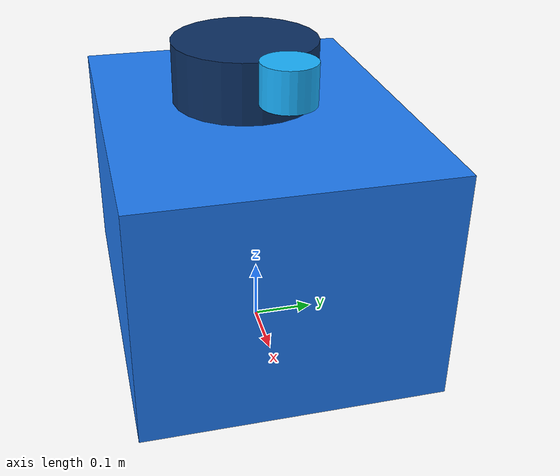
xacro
<?xml version="1.0"?>
<robot name="showroom_guide_robot" xmlns:xacro="http://www.ros.org/wiki/xacro">
  <!-- ROS-side kinematic model. Gazebo physics lives in the SDF xacro next
       to this file. Dimensions intentionally match the Stage guide robot. -->
  <xacro:include filename="$(find showroom_description)/urdf/materials.xacro"/>

  <xacro:property name="body_length" value="0.62"/>
  <xacro:property name="body_width" value="0.48"/>
  <xacro:property name="body_height" value="0.38"/>
  <xacro:property name="wheel_radius" value="0.08"/>
  <xacro:property name="wheel_width" value="0.045"/>
  <xacro:property name="wheel_separation" value="0.40"/>

  <link name="base_footprint"/>

  <link name="base_link">
    <inertial>
      <origin xyz="-0.04 0 0.19" rpy="0 0 0"/>
      <mass value="22.5"/>
      <inertia ixx="0.50" ixy="0" ixz="0" iyy="0.78" iyz="0" izz="0.95"/>
    </inertial>
    <collision>
      <origin xyz="-0.04 0 0.19" rpy="0 0 0"/>
      <geometry>
        <box size="${body_length} ${body_width} ${body_height}"/>
      </geometry>
    </collision>
    <visual>
      <origin xyz="-0.04 0 0.19" rpy="0 0 0"/>
      <geometry>
        <box size="${body_length} ${body_width} ${body_height}"/>
      </geometry>
      <material name="showroom_blue"/>
    </visual>
    <visual>
      <origin xyz="-0.08 0 0.43" rpy="0 0 0"/>
      <geometry>
        <cylinder radius="0.12" length="0.10"/>
      </geometry>
      <material name="showroom_dark_blue"/>
    </visual>
  </link>

  <joint name="base_footprint_joint" type="fixed">
    <parent link="base_footprint"/>
    <child link="base_link"/>
    <origin xyz="0 0 0" rpy="0 0 0"/>
  </joint>

  <xacro:macro name="drive_wheel" params="side sign">
    <link name="${side}_wheel_link">
      <inertial>
        <origin xyz="0 0 0" rpy="0 0 0"/>
        <mass value="0.75"/>
        <inertia ixx="0.0014" ixy="0" ixz="0" iyy="0.0024" iyz="0" izz="0.0014"/>
      </inertial>
      <collision>
        <geometry>
          <cylinder radius="${wheel_radius}" length="${wheel_width}"/>
        </geometry>
      </collision>
      <visual>
        <geometry>
          <cylinder radius="${wheel_radius}" length="${wheel_width}"/>
        </geometry>
        <material name="showroom_black"/>
      </visual>
    </link>
    <joint name="${side}_wheel_joint" type="continuous">
      <parent link="base_link"/>
      <child link="${side}_wheel_link"/>
      <origin xyz="0 ${sign * wheel_separation / 2.0} ${wheel_radius}" rpy="${-pi / 2.0} 0 0"/>
      <axis xyz="0 0 1"/>
    </joint>
  </xacro:macro>

  <xacro:drive_wheel side="left" sign="1"/>
  <xacro:drive_wheel side="right" sign="-1"/>

  <link name="base_scan">
    <visual>
      <geometry>
        <cylinder radius="0.04" length="0.06"/>
      </geometry>
      <material name="showroom_lidar"/>
    </visual>
  </link>
  <joint name="base_scan_joint" type="fixed">
    <parent link="base_link"/>
    <child link="base_scan"/>
    <origin xyz="0.18 0 0.50" rpy="0 0 0"/>
  </joint>
</robot>

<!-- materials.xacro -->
<robot xmlns:xacro="http://www.ros.org/wiki/xacro">
  <material name="showroom_blue">
    <color rgba="0.12 0.48 0.95 1.0"/>
  </material>
  <material name="showroom_dark_blue">
    <color rgba="0.04 0.18 0.38 1.0"/>
  </material>
  <material name="showroom_black">
    <color rgba="0.03 0.04 0.05 1.0"/>
  </material>
  <material name="showroom_lidar">
    <color rgba="0.10 0.70 1.00 1.0"/>
  </material>
</robot>
